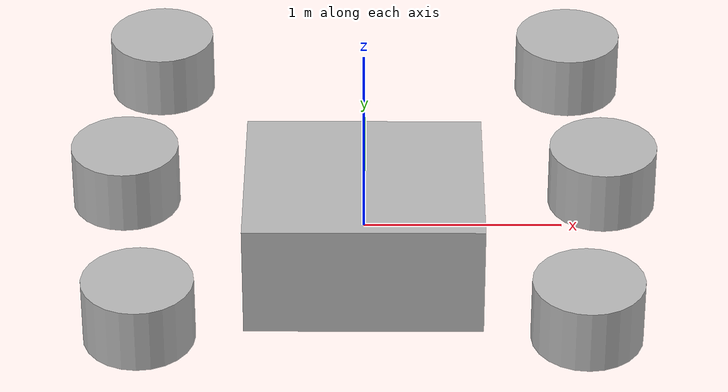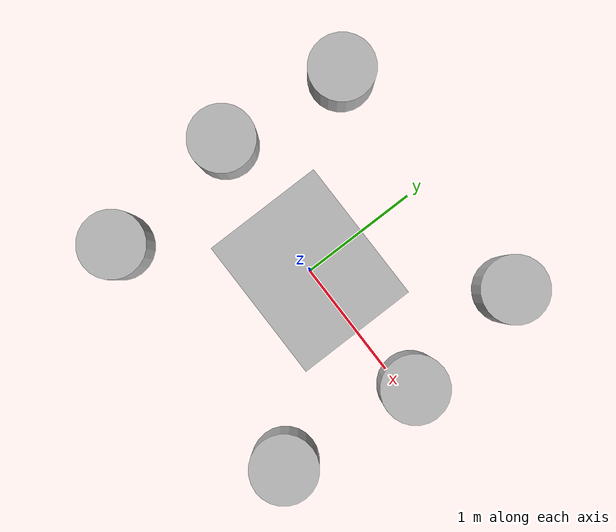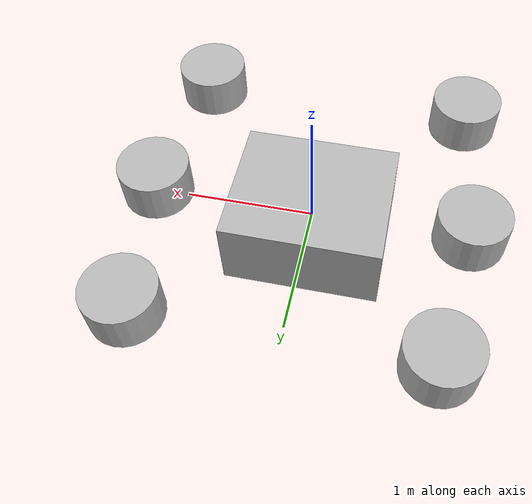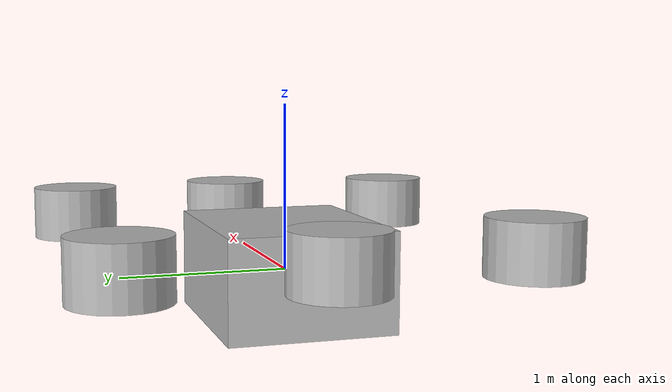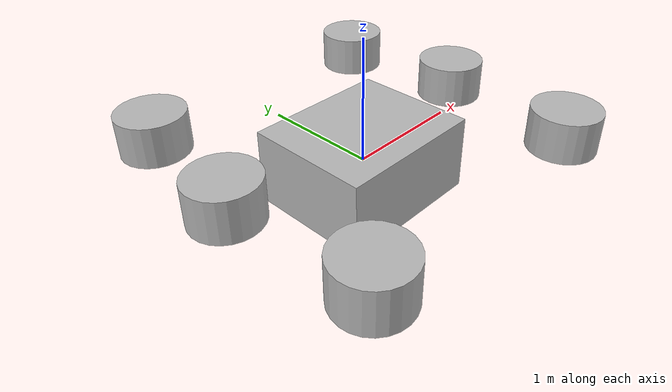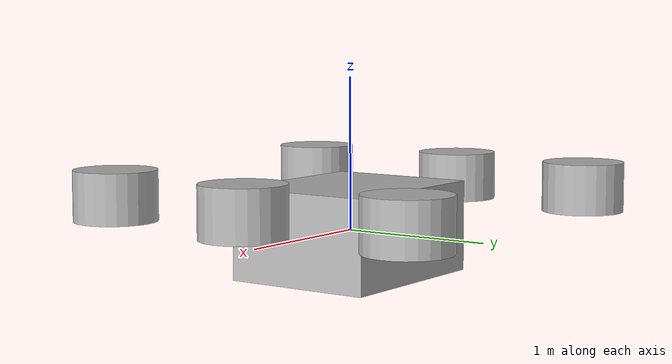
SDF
<?xml version="1.0" ?>
<sdf version="1.9">
  <model name="perseverance">

    <!-- Base link: chassis, mass 1025 kg, IMU + all cameras/LIDAR/contact -->
    <link name="base_link">
      <pose>0 0 0 0 0 0</pose>
      <inertial>
        <pose>0 0 0.8 0 0 0</pose>
        <mass>1025</mass>
        <inertia>
          <ixx>10</ixx><ixy>0</ixy><ixz>0</ixz>
          <iyy>25</iyy><iyz>0</iyz>
          <izz>20</izz>
        </inertia>
      </inertial>
      <collision name="base_link_collision">
        <geometry>
          <box><size>1.2 1.0 0.6</size></box>
        </geometry>
        <surface>
          <friction>
            <ode><mu>0.5</mu><mu2>1.0</mu2></ode>
          </friction>
        </surface>
      </collision>
      <!-- Box visual so sim loads without mesh; add resources/perseverance.dae for real rover mesh -->
      <visual name="base_visual">
        <geometry>
          <box><size>1.2 1.0 0.6</size></box>
        </geometry>
      </visual>

      <!-- Existing IMU (50 Hz, Gaussian noise) -->
      <sensor name="imu_sensor" type="imu">
        <always_on>1</always_on>
        <update_rate>50</update_rate>
        <imu>
          <angular_velocity>
            <x><noise type="gaussian"><mean>0</mean><stddev>0.0002</stddev><bias_mean>7.5e-06</bias_mean><bias_stddev>8e-07</bias_stddev><dynamic_bias_stddev>4e-07</dynamic_bias_stddev><dynamic_bias_correlation_time>1000</dynamic_bias_correlation_time></noise></x>
            <y><noise type="gaussian"><mean>0</mean><stddev>0.0002</stddev><bias_mean>7.5e-06</bias_mean><bias_stddev>8e-07</bias_stddev><dynamic_bias_stddev>4e-07</dynamic_bias_stddev><dynamic_bias_correlation_time>1000</dynamic_bias_correlation_time></noise></y>
            <z><noise type="gaussian"><mean>0</mean><stddev>0.0002</stddev><bias_mean>7.5e-06</bias_mean><bias_stddev>8e-07</bias_stddev><dynamic_bias_stddev>4e-07</dynamic_bias_stddev><dynamic_bias_correlation_time>1000</dynamic_bias_correlation_time></noise></z>
          </angular_velocity>
          <linear_acceleration>
            <x><noise type="gaussian"><mean>0</mean><stddev>0.01</stddev><bias_mean>0.1</bias_mean><bias_stddev>0.001</bias_stddev><dynamic_bias_stddev>0.002</dynamic_bias_stddev><dynamic_bias_correlation_time>300</dynamic_bias_correlation_time></noise></x>
            <y><noise type="gaussian"><mean>0</mean><stddev>0.01</stddev><bias_mean>0.1</bias_mean><bias_stddev>0.001</bias_stddev><dynamic_bias_stddev>0.002</dynamic_bias_stddev><dynamic_bias_correlation_time>300</dynamic_bias_correlation_time></noise></y>
            <z><noise type="gaussian"><mean>0</mean><stddev>0.01</stddev><bias_mean>0.1</bias_mean><bias_stddev>0.001</bias_stddev><dynamic_bias_stddev>0.002</dynamic_bias_stddev><dynamic_bias_correlation_time>300</dynamic_bias_correlation_time></noise></z>
          </linear_acceleration>
        </imu>
        <topic>/rover/imu</topic>
      </sensor>

      <!-- === NAVCAM (Front Stereo Camera) === -->
      <sensor name="navcam_left" type="camera">
        <pose>0.5 0.15 1.5 0 0.2 0</pose>
        <always_on>1</always_on>
        <update_rate>15</update_rate>
        <camera name="navcam_left">
          <horizontal_fov>1.3962634</horizontal_fov>
          <image>
            <width>1280</width>
            <height>960</height>
            <format>R8G8B8</format>
          </image>
          <clip><near>0.1</near><far>500</far></clip>
          <noise>
            <type>gaussian</type>
            <mean>0.0</mean>
            <stddev>0.007</stddev>
          </noise>
        </camera>
        <topic>/rover/navcam_left</topic>
      </sensor>

      <!-- === HAZCAM FRONT (Obstacle Detection) === -->
      <sensor name="hazcam_front" type="depth_camera">
        <pose>0.8 0 0.4 0 0.5 0</pose>
        <always_on>1</always_on>
        <update_rate>10</update_rate>
        <camera name="hazcam_front">
          <horizontal_fov>2.0944</horizontal_fov>
          <image>
            <width>640</width>
            <height>480</height>
            <format>R_FLOAT32</format>
          </image>
          <clip><near>0.05</near><far>20</far></clip>
        </camera>
        <topic>/rover/hazcam_front</topic>
      </sensor>

      <!-- === HAZCAM REAR === -->
      <sensor name="hazcam_rear" type="depth_camera">
        <pose>-0.8 0 0.4 0 0.5 3.14159</pose>
        <always_on>1</always_on>
        <update_rate>10</update_rate>
        <camera name="hazcam_rear">
          <horizontal_fov>2.0944</horizontal_fov>
          <image>
            <width>640</width>
            <height>480</height>
            <format>R_FLOAT32</format>
          </image>
          <clip><near>0.05</near><far>20</far></clip>
        </camera>
        <topic>/rover/hazcam_rear</topic>
      </sensor>

      <!-- === MASTCAM (High-res Science Camera on Mast) === -->
      <sensor name="mastcam" type="camera">
        <pose>0.3 0 2.0 0 0 0</pose>
        <always_on>1</always_on>
        <update_rate>5</update_rate>
        <camera name="mastcam">
          <horizontal_fov>0.2967</horizontal_fov>
          <image>
            <width>1600</width>
            <height>1200</height>
            <format>R8G8B8</format>
          </image>
          <clip><near>1.0</near><far>2000</far></clip>
        </camera>
        <topic>/rover/mastcam</topic>
      </sensor>

      <!-- === SUPERCAM LIDAR === -->
      <sensor name="supercam_lidar" type="gpu_lidar">
        <pose>0.3 0 2.1 0 0 0</pose>
        <always_on>1</always_on>
        <update_rate>10</update_rate>
        <lidar>
          <scan>
            <horizontal>
              <samples>360</samples>
              <resolution>1</resolution>
              <min_angle>-3.14159</min_angle>
              <max_angle>3.14159</max_angle>
            </horizontal>
            <vertical>
              <samples>16</samples>
              <resolution>1</resolution>
              <min_angle>-0.26</min_angle>
              <max_angle>0.26</max_angle>
            </vertical>
          </scan>
          <range>
            <min>0.1</min>
            <max>100</max>
            <resolution>0.01</resolution>
          </range>
          <noise>
            <type>gaussian</type>
            <mean>0</mean>
            <stddev>0.02</stddev>
          </noise>
        </lidar>
        <topic>/rover/lidar</topic>
        <visualize>true</visualize>
      </sensor>

      <!-- === CONTACT SENSOR (Wheel Ground Contact) === -->
      <sensor name="wheel_contact" type="contact">
        <always_on>1</always_on>
        <update_rate>30</update_rate>
        <contact>
          <collision>base_link_collision</collision>
        </contact>
        <topic>/rover/contact</topic>
      </sensor>
    </link>

    <!-- Left wheels (y forward, x right, z up; left side at x=1.07) -->
    <link name="left_wheel1">
      <pose>1.07 1.14 0.26 0 0 0</pose>
      <inertial><mass>10</mass><inertia><ixx>0.1</ixx><ixy>0</ixy><ixz>0</ixz><iyy>0.1</iyy><iyz>0</iyz><izz>0.1</izz></inertia></inertial>
      <collision name="left_wheel1_collision">
        <pose>0 0 0 0 1.5707963267948966 0</pose>
        <geometry><cylinder><radius>0.27</radius><length>0.33</length></cylinder></geometry>
        <surface>
          <friction>
            <ode>
              <mu>0.5</mu><mu2>1.0</mu2>
              <slip1>0.00092</slip1><slip2>0</slip2>
              <fdir1>0 0 1</fdir1>
            </ode>
          </friction>
          <contact>
            <ode><kp>1e7</kp><kd>1</kd></ode>
          </contact>
        </surface>
      </collision>
      <visual name="left_wheel1_visual">
        <geometry><cylinder><radius>0.27</radius><length>0.33</length></cylinder></geometry>
      </visual>
    </link>
    <link name="left_wheel2">
      <pose>1.2 0.08 0.26 0 0 0</pose>
      <inertial><mass>10</mass><inertia><ixx>0.1</ixx><ixy>0</ixy><ixz>0</ixz><iyy>0.1</iyy><iyz>0</iyz><izz>0.1</izz></inertia></inertial>
      <collision name="left_wheel2_collision">
        <pose>0 0 0 0 1.5707963267948966 0</pose>
        <geometry><cylinder><radius>0.27</radius><length>0.33</length></cylinder></geometry>
        <surface>
          <friction>
            <ode>
              <mu>0.5</mu><mu2>1.0</mu2>
              <slip1>0.00092</slip1><slip2>0</slip2>
              <fdir1>0 0 1</fdir1>
            </ode>
          </friction>
          <contact>
            <ode><kp>1e7</kp><kd>1</kd></ode>
          </contact>
        </surface>
      </collision>
      <visual name="left_wheel2_visual">
        <geometry><cylinder><radius>0.27</radius><length>0.33</length></cylinder></geometry>
      </visual>
    </link>
    <link name="left_wheel3">
      <pose>1.07 -1.07 0.26 0 0 0</pose>
      <inertial><mass>10</mass><inertia><ixx>0.1</ixx><ixy>0</ixy><ixz>0</ixz><iyy>0.1</iyy><iyz>0</iyz><izz>0.1</izz></inertia></inertial>
      <collision name="left_wheel3_collision">
        <pose>0 0 0 0 1.5707963267948966 0</pose>
        <geometry><cylinder><radius>0.27</radius><length>0.33</length></cylinder></geometry>
        <surface>
          <friction>
            <ode>
              <mu>0.5</mu><mu2>1.0</mu2>
              <slip1>0.00092</slip1><slip2>0</slip2>
              <fdir1>0 0 1</fdir1>
            </ode>
          </friction>
          <contact>
            <ode><kp>1e7</kp><kd>1</kd></ode>
          </contact>
        </surface>
      </collision>
      <visual name="left_wheel3_visual">
        <geometry><cylinder><radius>0.27</radius><length>0.33</length></cylinder></geometry>
      </visual>
    </link>

    <!-- Right wheels (at x=-1.07) -->
    <link name="right_wheel1">
      <pose>-1.07 1.14 0.26 0 0 0</pose>
      <inertial><mass>10</mass><inertia><ixx>0.1</ixx><ixy>0</ixy><ixz>0</ixz><iyy>0.1</iyy><iyz>0</iyz><izz>0.1</izz></inertia></inertial>
      <collision name="right_wheel1_collision">
        <pose>0 0 0 0 1.5707963267948966 0</pose>
        <geometry><cylinder><radius>0.27</radius><length>0.33</length></cylinder></geometry>
        <surface>
          <friction>
            <ode>
              <mu>0.5</mu><mu2>1.0</mu2>
              <slip1>0.00092</slip1><slip2>0</slip2>
              <fdir1>0 0 1</fdir1>
            </ode>
          </friction>
          <contact>
            <ode><kp>1e7</kp><kd>1</kd></ode>
          </contact>
        </surface>
      </collision>
      <visual name="right_wheel1_visual">
        <geometry><cylinder><radius>0.27</radius><length>0.33</length></cylinder></geometry>
      </visual>
    </link>
    <link name="right_wheel2">
      <pose>-1.2 0.08 0.26 0 0 0</pose>
      <inertial><mass>10</mass><inertia><ixx>0.1</ixx><ixy>0</ixy><ixz>0</ixz><iyy>0.1</iyy><iyz>0</iyz><izz>0.1</izz></inertia></inertial>
      <collision name="right_wheel2_collision">
        <pose>0 0 0 0 1.5707963267948966 0</pose>
        <geometry><cylinder><radius>0.27</radius><length>0.33</length></cylinder></geometry>
        <surface>
          <friction>
            <ode>
              <mu>0.5</mu><mu2>1.0</mu2>
              <slip1>0.00092</slip1><slip2>0</slip2>
              <fdir1>0 0 1</fdir1>
            </ode>
          </friction>
          <contact>
            <ode><kp>1e7</kp><kd>1</kd></ode>
          </contact>
        </surface>
      </collision>
      <visual name="right_wheel2_visual">
        <geometry><cylinder><radius>0.27</radius><length>0.33</length></cylinder></geometry>
      </visual>
    </link>
    <link name="right_wheel3">
      <pose>-1.07 -1.07 0.26 0 0 0</pose>
      <inertial><mass>10</mass><inertia><ixx>0.1</ixx><ixy>0</ixy><ixz>0</ixz><iyy>0.1</iyy><iyz>0</iyz><izz>0.1</izz></inertia></inertial>
      <collision name="right_wheel3_collision">
        <pose>0 0 0 0 1.5707963267948966 0</pose>
        <geometry><cylinder><radius>0.27</radius><length>0.33</length></cylinder></geometry>
        <surface>
          <friction>
            <ode>
              <mu>0.5</mu><mu2>1.0</mu2>
              <slip1>0.00092</slip1><slip2>0</slip2>
              <fdir1>0 0 1</fdir1>
            </ode>
          </friction>
          <contact>
            <ode><kp>1e7</kp><kd>1</kd></ode>
          </contact>
        </surface>
      </collision>
      <visual name="right_wheel3_visual">
        <geometry><cylinder><radius>0.27</radius><length>0.33</length></cylinder></geometry>
      </visual>
    </link>

    <!-- Revolute joints: parent base_link, child wheel, axis Y for rolling -->
    <joint name="left_wheel1_j" type="revolute">
      <parent>base_link</parent>
      <child>left_wheel1</child>
      <axis><xyz expressed_in="__model__">0 1 0</xyz></axis>
      <limit><lower>-1e16</lower><upper>1e16</upper></limit>
    </joint>
    <joint name="left_wheel2_j" type="revolute">
      <parent>base_link</parent>
      <child>left_wheel2</child>
      <axis><xyz expressed_in="__model__">0 1 0</xyz></axis>
      <limit><lower>-1e16</lower><upper>1e16</upper></limit>
    </joint>
    <joint name="left_wheel3_j" type="revolute">
      <parent>base_link</parent>
      <child>left_wheel3</child>
      <axis><xyz expressed_in="__model__">0 1 0</xyz></axis>
      <limit><lower>-1e16</lower><upper>1e16</upper></limit>
    </joint>
    <joint name="right_wheel1_j" type="revolute">
      <parent>base_link</parent>
      <child>right_wheel1</child>
      <axis><xyz expressed_in="__model__">0 1 0</xyz></axis>
      <limit><lower>-1e16</lower><upper>1e16</upper></limit>
    </joint>
    <joint name="right_wheel2_j" type="revolute">
      <parent>base_link</parent>
      <child>right_wheel2</child>
      <axis><xyz expressed_in="__model__">0 1 0</xyz></axis>
      <limit><lower>-1e16</lower><upper>1e16</upper></limit>
    </joint>
    <joint name="right_wheel3_j" type="revolute">
      <parent>base_link</parent>
      <child>right_wheel3</child>
      <axis><xyz expressed_in="__model__">0 1 0</xyz></axis>
      <limit><lower>-1e16</lower><upper>1e16</upper></limit>
    </joint>

    <!-- === DIFFERENTIAL DRIVE PLUGIN === -->
    <plugin filename="gz-sim-diff-drive-system" name="gz::sim::systems::DiffDrive">
      <left_joint>left_wheel1_j</left_joint>
      <left_joint>left_wheel2_j</left_joint>
      <left_joint>left_wheel3_j</left_joint>
      <right_joint>right_wheel1_j</right_joint>
      <right_joint>right_wheel2_j</right_joint>
      <right_joint>right_wheel3_j</right_joint>
      <wheel_separation>2.14</wheel_separation>
      <wheel_radius>0.27</wheel_radius>
      <max_linear_acceleration>0.5</max_linear_acceleration>
      <min_linear_acceleration>-0.5</min_linear_acceleration>
      <max_angular_acceleration>0.3</max_angular_acceleration>
      <min_angular_acceleration>-0.3</min_angular_acceleration>
      <topic>/rover/cmd_vel</topic>
      <odom_topic>/rover/odometry</odom_topic>
      <tf_topic>/rover/tf</tf_topic>
      <frame_id>odom</frame_id>
      <child_frame_id>base_link</child_frame_id>
      <odom_publish_frequency>20</odom_publish_frequency>
    </plugin>

    <!-- === JOINT STATE PUBLISHER === -->
    <plugin filename="gz-sim-joint-state-publisher-system" name="gz::sim::systems::JointStatePublisher">
      <topic>/rover/joint_states</topic>
    </plugin>

  </model>
</sdf>
